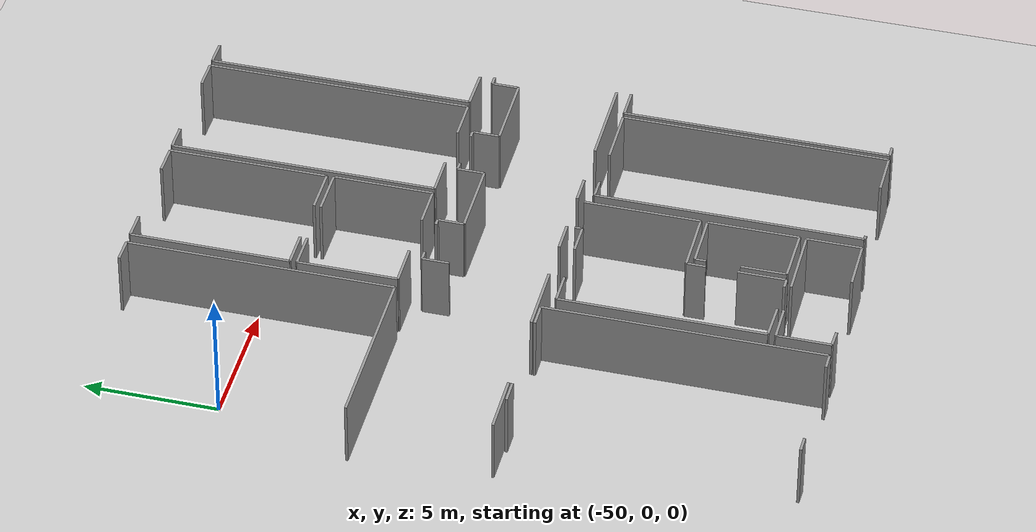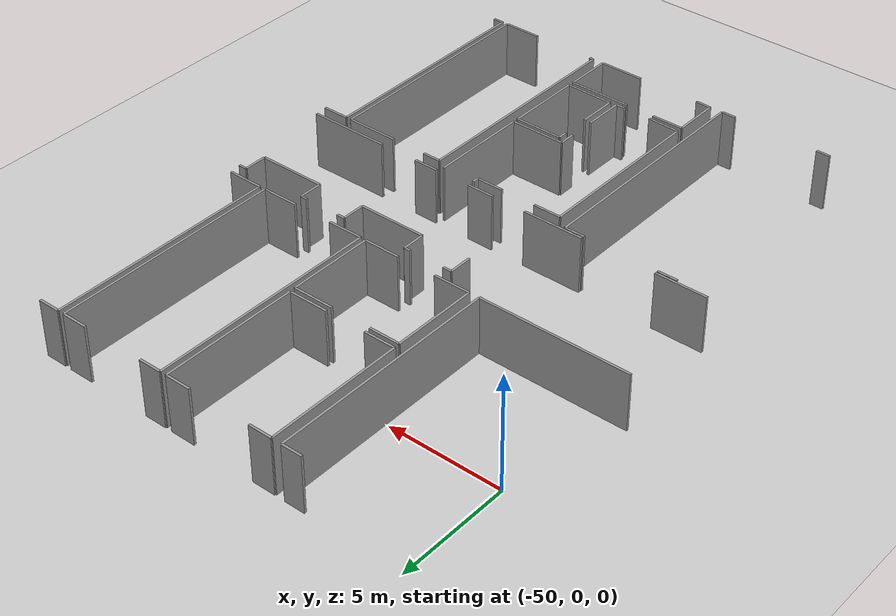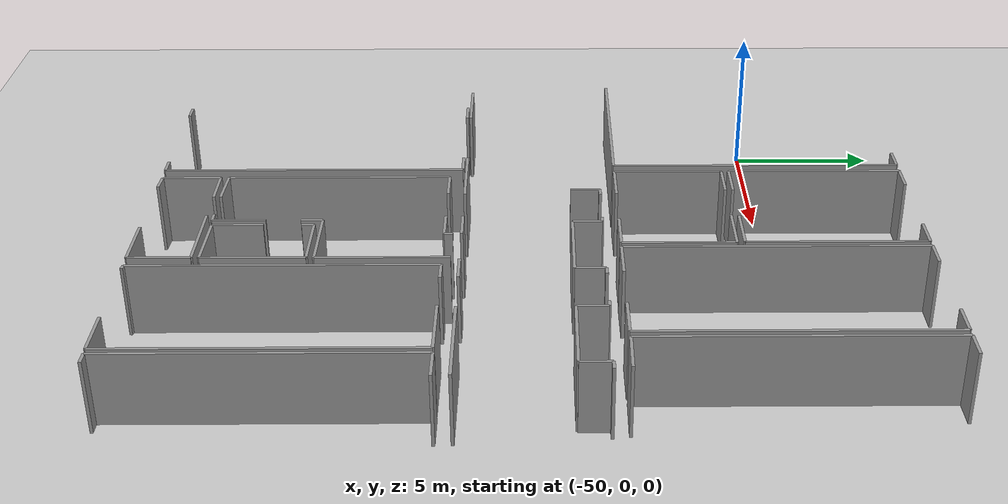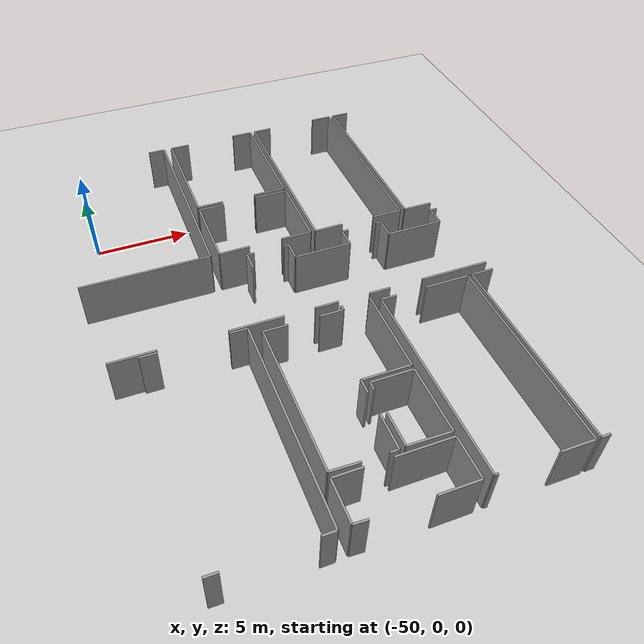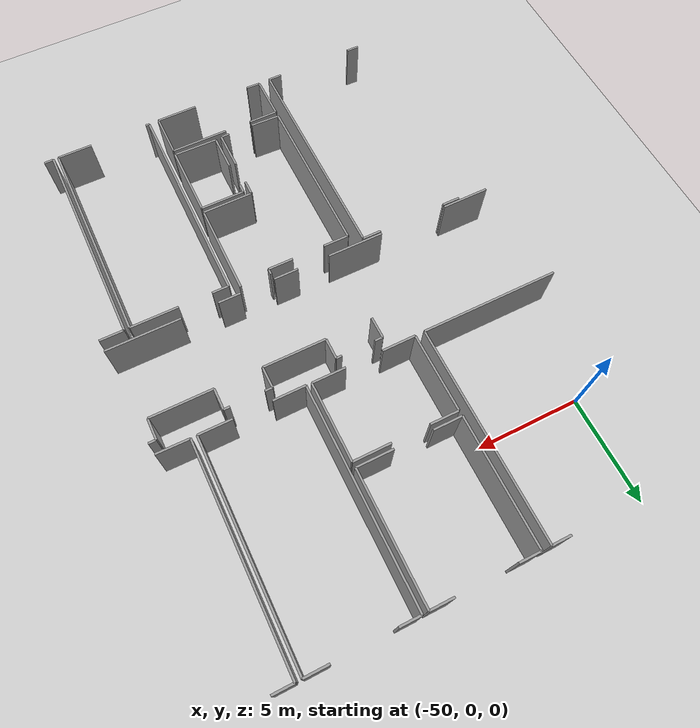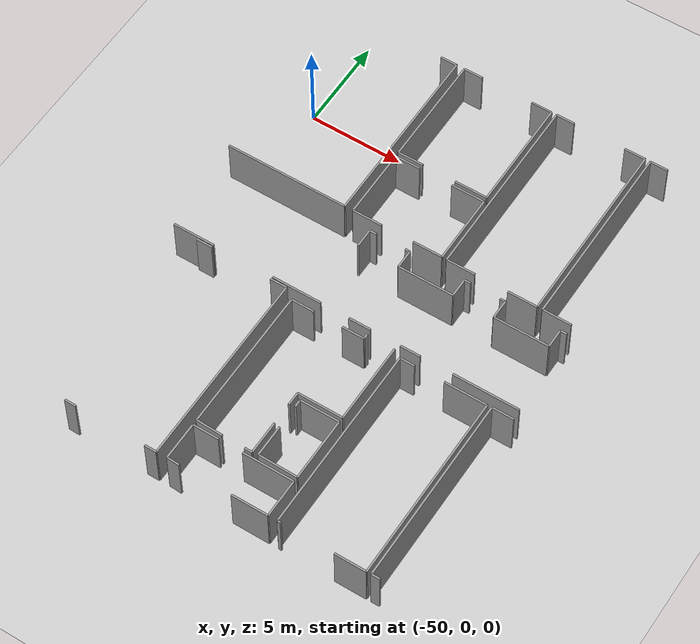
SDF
<sdf version="1.6">
 <world name="default">
  <model name="ground_plane">
   <static>1</static>
   <link name="link">
    <collision name="collision">
     <geometry><plane><normal>0 0 1</normal><size>100 100</size></plane></geometry>
     <surface><friction><ode><mu>100</mu><mu2>50</mu2></ode></friction></surface>
    </collision>
    <visual name="visual">
     <cast_shadows>0</cast_shadows>
     <geometry><plane><normal>0 0 1</normal><size>100 100</size></plane></geometry>
     <material>
      <script><uri>file://media/materials/scripts/gazebo.material</uri><name>Gazebo/Grey</name></script>
     </material>
    </visual>
   </link>
  </model>
  <model name="50055639">
   <static>1</static>
   <link name="Wall_20">
    <collision name="Wall_20_Collision">
     <geometry><box><size>0.902397847142 0.1 2.5</size></box></geometry>
     <pose>0.451198923571 0 1.25 0 0 0</pose>
    </collision>
    <visual name="Wall_20_Visual">
     <pose>0.451198923571 0 1.25 0 0 0</pose>
     <geometry><box><size>0.902397847142 0.1 2.5</size></box></geometry>
     <material>
      <script><uri>file://media/materials/scripts/gazebo.material</uri><name>Gazebo/Grey</name></script>
      <ambient>1 1 1 1</ambient>
     </material>
    </visual>
    <pose>24.6544129781 -15.9805785806 0 0 0 0.0</pose>
   </link>
   <link name="Wall_21">
    <collision name="Wall_21_Collision">
     <geometry><box><size>10.0073623681 0.1 2.5</size></box></geometry>
     <pose>5.00368118407 0 1.25 0 0 0</pose>
    </collision>
    <visual name="Wall_21_Visual">
     <pose>5.00368118407 0 1.25 0 0 0</pose>
     <geometry><box><size>10.0073623681 0.1 2.5</size></box></geometry>
     <material>
      <script><uri>file://media/materials/scripts/gazebo.material</uri><name>Gazebo/Grey</name></script>
      <ambient>1 1 1 1</ambient>
     </material>
    </visual>
    <pose>25.5568108252 -15.9805785806 0 0 0 -1.57079632679</pose>
   </link>
   <link name="Wall_22">
    <collision name="Wall_22_Collision">
     <geometry><box><size>6.57789512434 0.1 2.5</size></box></geometry>
     <pose>3.28894756217 0 1.25 0 0 0</pose>
    </collision>
    <visual name="Wall_22_Visual">
     <pose>3.28894756217 0 1.25 0 0 0</pose>
     <geometry><box><size>6.57789512434 0.1 2.5</size></box></geometry>
     <material>
      <script><uri>file://media/materials/scripts/gazebo.material</uri><name>Gazebo/Grey</name></script>
      <ambient>1 1 1 1</ambient>
     </material>
    </visual>
    <pose>25.5568108252 -25.9879409487 0 0 0 3.14159265359</pose>
   </link>
   <link name="Wall_51">
    <collision name="Wall_51_Collision">
     <geometry><box><size>1.01549905432 0.1 2.5</size></box></geometry>
     <pose>0.507749527158 0 1.25 0 0 0</pose>
    </collision>
    <visual name="Wall_51_Visual">
     <pose>0.507749527158 0 1.25 0 0 0</pose>
     <geometry><box><size>1.01549905432 0.1 2.5</size></box></geometry>
     <material>
      <script><uri>file://media/materials/scripts/gazebo.material</uri><name>Gazebo/Grey</name></script>
      <ambient>1 1 1 1</ambient>
     </material>
    </visual>
    <pose>27.3058810089 -27.5452087485 0 0 0 1.57079632679</pose>
   </link>
   <link name="Wall_52">
    <collision name="Wall_52_Collision">
     <geometry><box><size>0.37522690057 0.1 2.5</size></box></geometry>
     <pose>0.187613450285 0 1.25 0 0 0</pose>
    </collision>
    <visual name="Wall_52_Visual">
     <pose>0.187613450285 0 1.25 0 0 0</pose>
     <geometry><box><size>0.37522690057 0.1 2.5</size></box></geometry>
     <material>
      <script><uri>file://media/materials/scripts/gazebo.material</uri><name>Gazebo/Grey</name></script>
      <ambient>1 1 1 1</ambient>
     </material>
    </visual>
    <pose>27.3058810089 -26.5297096942 0 0 0 0.0</pose>
   </link>
   <link name="Wall_53">
    <collision name="Wall_53_Collision">
     <geometry><box><size>0.268726437249 0.1 2.5</size></box></geometry>
     <pose>0.134363218624 0 1.25 0 0 0</pose>
    </collision>
    <visual name="Wall_53_Visual">
     <pose>0.134363218624 0 1.25 0 0 0</pose>
     <geometry><box><size>0.268726437249 0.1 2.5</size></box></geometry>
     <material>
      <script><uri>file://media/materials/scripts/gazebo.material</uri><name>Gazebo/Grey</name></script>
      <ambient>1 1 1 1</ambient>
     </material>
    </visual>
    <pose>29.2600820015 -26.5297096942 0 0 0 0.0</pose>
   </link>
   <link name="Wall_54">
    <collision name="Wall_54_Collision">
     <geometry><box><size>0.988588329377 0.1 2.5</size></box></geometry>
     <pose>0.494294164689 0 1.25 0 0 0</pose>
    </collision>
    <visual name="Wall_54_Visual">
     <pose>0.494294164689 0 1.25 0 0 0</pose>
     <geometry><box><size>0.988588329377 0.1 2.5</size></box></geometry>
     <material>
      <script><uri>file://media/materials/scripts/gazebo.material</uri><name>Gazebo/Grey</name></script>
      <ambient>1 1 1 1</ambient>
     </material>
    </visual>
    <pose>29.5288084388 -26.5297096942 0 0 0 -1.57079632679</pose>
   </link>
   <link name="Wall_55">
    <collision name="Wall_55_Collision">
     <geometry><box><size>2.96589192551 0.1 2.5</size></box></geometry>
     <pose>1.48294596276 0 1.25 0 0 0</pose>
    </collision>
    <visual name="Wall_55_Visual">
     <pose>1.48294596276 0 1.25 0 0 0</pose>
     <geometry><box><size>2.96589192551 0.1 2.5</size></box></geometry>
     <material>
      <script><uri>file://media/materials/scripts/gazebo.material</uri><name>Gazebo/Grey</name></script>
      <ambient>1 1 1 1</ambient>
     </material>
    </visual>
    <pose>29.5288084388 -27.5182980236 0 0 0 0.0</pose>
   </link>
   <link name="Wall_56">
    <collision name="Wall_56_Collision">
     <geometry><box><size>1.00788281141 0.1 2.5</size></box></geometry>
     <pose>0.503941405705 0 1.25 0 0 0</pose>
    </collision>
    <visual name="Wall_56_Visual">
     <pose>0.503941405705 0 1.25 0 0 0</pose>
     <geometry><box><size>1.00788281141 0.1 2.5</size></box></geometry>
     <material>
      <script><uri>file://media/materials/scripts/gazebo.material</uri><name>Gazebo/Grey</name></script>
      <ambient>1 1 1 1</ambient>
     </material>
    </visual>
    <pose>32.4947003643 -27.5182980236 0 0 0 1.57079632679</pose>
   </link>
   <link name="Wall_57">
    <collision name="Wall_57_Collision">
     <geometry><box><size>0.345523553231 0.1 2.5</size></box></geometry>
     <pose>0.172761776616 0 1.25 0 0 0</pose>
    </collision>
    <visual name="Wall_57_Visual">
     <pose>0.172761776616 0 1.25 0 0 0</pose>
     <geometry><box><size>0.345523553231 0.1 2.5</size></box></geometry>
     <material>
      <script><uri>file://media/materials/scripts/gazebo.material</uri><name>Gazebo/Grey</name></script>
      <ambient>1 1 1 1</ambient>
     </material>
    </visual>
    <pose>32.4947003643 -26.5104152122 0 0 0 0.0</pose>
   </link>
   <link name="Wall_58">
    <collision name="Wall_58_Collision">
     <geometry><box><size>0.287893981899 0.1 2.5</size></box></geometry>
     <pose>0.143946990949 0 1.25 0 0 0</pose>
    </collision>
    <visual name="Wall_58_Visual">
     <pose>0.143946990949 0 1.25 0 0 0</pose>
     <geometry><box><size>0.287893981899 0.1 2.5</size></box></geometry>
     <material>
      <script><uri>file://media/materials/scripts/gazebo.material</uri><name>Gazebo/Grey</name></script>
      <ambient>1 1 1 1</ambient>
     </material>
    </visual>
    <pose>34.4143743891 -26.5104152122 0 0 0 0.0</pose>
   </link>
   <link name="Wall_59">
    <collision name="Wall_59_Collision">
     <geometry><box><size>1.01753005243 0.1 2.5</size></box></geometry>
     <pose>0.508765026213 0 1.25 0 0 0</pose>
    </collision>
    <visual name="Wall_59_Visual">
     <pose>0.508765026213 0 1.25 0 0 0</pose>
     <geometry><box><size>1.01753005243 0.1 2.5</size></box></geometry>
     <material>
      <script><uri>file://media/materials/scripts/gazebo.material</uri><name>Gazebo/Grey</name></script>
      <ambient>1 1 1 1</ambient>
     </material>
    </visual>
    <pose>34.702268371 -26.5104152122 0 0 0 -1.57079632679</pose>
   </link>
   <link name="Wall_60">
    <collision name="Wall_60_Collision">
     <geometry><box><size>2.93707713985 0.1 2.5</size></box></geometry>
     <pose>1.46853856992 0 1.25 0 0 0</pose>
    </collision>
    <visual name="Wall_60_Visual">
     <pose>1.46853856992 0 1.25 0 0 0</pose>
     <geometry><box><size>2.93707713985 0.1 2.5</size></box></geometry>
     <material>
      <script><uri>file://media/materials/scripts/gazebo.material</uri><name>Gazebo/Grey</name></script>
      <ambient>1 1 1 1</ambient>
     </material>
    </visual>
    <pose>34.702268371 -27.5279452646 0 0 0 0.0</pose>
   </link>
   <link name="Wall_61">
    <collision name="Wall_61_Collision">
     <geometry><box><size>1.00788281141 0.1 2.5</size></box></geometry>
     <pose>0.503941405705 0 1.25 0 0 0</pose>
    </collision>
    <visual name="Wall_61_Visual">
     <pose>0.503941405705 0 1.25 0 0 0</pose>
     <geometry><box><size>1.00788281141 0.1 2.5</size></box></geometry>
     <material>
      <script><uri>file://media/materials/scripts/gazebo.material</uri><name>Gazebo/Grey</name></script>
      <ambient>1 1 1 1</ambient>
     </material>
    </visual>
    <pose>37.6393455109 -27.5279452646 0 0 0 1.57079632679</pose>
   </link>
   <link name="Wall_62">
    <collision name="Wall_62_Collision">
     <geometry><box><size>0.355170794247 0.1 2.5</size></box></geometry>
     <pose>0.177585397124 0 1.25 0 0 0</pose>
    </collision>
    <visual name="Wall_62_Visual">
     <pose>0.177585397124 0 1.25 0 0 0</pose>
     <geometry><box><size>0.355170794247 0.1 2.5</size></box></geometry>
     <material>
      <script><uri>file://media/materials/scripts/gazebo.material</uri><name>Gazebo/Grey</name></script>
      <ambient>1 1 1 1</ambient>
     </material>
    </visual>
    <pose>37.6393455109 -26.5200624532 0 0 0 0.0</pose>
   </link>
   <link name="Wall_82">
    <collision name="Wall_82_Collision">
     <geometry><box><size>3.52885921375 0.1 2.5</size></box></geometry>
     <pose>1.76442960687 0 1.25 0 0 0</pose>
    </collision>
    <visual name="Wall_82_Visual">
     <pose>1.76442960687 0 1.25 0 0 0</pose>
     <geometry><box><size>3.52885921375 0.1 2.5</size></box></geometry>
     <material>
      <script><uri>file://media/materials/scripts/gazebo.material</uri><name>Gazebo/Grey</name></script>
      <ambient>1 1 1 1</ambient>
     </material>
    </visual>
    <pose>38.2627349928 -31.1545462623 0 0 0 3.14159265359</pose>
   </link>
   <link name="Wall_83">
    <collision name="Wall_83_Collision">
     <geometry><box><size>1.0671625687 0.1 2.5</size></box></geometry>
     <pose>0.533581284352 0 1.25 0 0 0</pose>
    </collision>
    <visual name="Wall_83_Visual">
     <pose>0.533581284352 0 1.25 0 0 0</pose>
     <geometry><box><size>1.0671625687 0.1 2.5</size></box></geometry>
     <material>
      <script><uri>file://media/materials/scripts/gazebo.material</uri><name>Gazebo/Grey</name></script>
      <ambient>1 1 1 1</ambient>
     </material>
    </visual>
    <pose>33.0014343924 -31.1545462623 0 0 0 3.14159265359</pose>
   </link>
   <link name="Wall_84">
    <collision name="Wall_84_Collision">
     <geometry><box><size>1.17683646657 0.1 2.5</size></box></geometry>
     <pose>0.588418233286 0 1.25 0 0 0</pose>
    </collision>
    <visual name="Wall_84_Visual">
     <pose>0.588418233286 0 1.25 0 0 0</pose>
     <geometry><box><size>1.17683646657 0.1 2.5</size></box></geometry>
     <material>
      <script><uri>file://media/materials/scripts/gazebo.material</uri><name>Gazebo/Grey</name></script>
      <ambient>1 1 1 1</ambient>
     </material>
    </visual>
    <pose>30.3233095114 -31.1545462623 0 0 0 3.14159265359</pose>
   </link>
   <link name="Wall_85">
    <collision name="Wall_85_Collision">
     <geometry><box><size>2.67660163241 0.1 2.5</size></box></geometry>
     <pose>1.33830081621 0 1.25 0 0 0</pose>
    </collision>
    <visual name="Wall_85_Visual">
     <pose>1.33830081621 0 1.25 0 0 0</pose>
     <geometry><box><size>2.67660163241 0.1 2.5</size></box></geometry>
     <material>
      <script><uri>file://media/materials/scripts/gazebo.material</uri><name>Gazebo/Grey</name></script>
      <ambient>1 1 1 1</ambient>
     </material>
    </visual>
    <pose>27.6082458523 -31.1545462623 0 0 0 3.14159265359</pose>
   </link>
   <link name="Wall_86">
    <collision name="Wall_86_Collision">
     <geometry><box><size>2.25034590437 0.1 2.5</size></box></geometry>
     <pose>1.12517295218 0 1.25 0 0 0</pose>
    </collision>
    <visual name="Wall_86_Visual">
     <pose>1.12517295218 0 1.25 0 0 0</pose>
     <geometry><box><size>2.25034590437 0.1 2.5</size></box></geometry>
     <material>
      <script><uri>file://media/materials/scripts/gazebo.material</uri><name>Gazebo/Grey</name></script>
      <ambient>1 1 1 1</ambient>
     </material>
    </visual>
    <pose>21.6433313446 -31.1545462623 0 0 0 3.14159265359</pose>
   </link>
   <link name="Wall_88">
    <collision name="Wall_88_Collision">
     <geometry><box><size>5.98966729712 0.1 2.5</size></box></geometry>
     <pose>2.99483364856 0 1.25 0 0 0</pose>
    </collision>
    <visual name="Wall_88_Visual">
     <pose>2.99483364856 0 1.25 0 0 0</pose>
     <geometry><box><size>5.98966729712 0.1 2.5</size></box></geometry>
     <material>
      <script><uri>file://media/materials/scripts/gazebo.material</uri><name>Gazebo/Grey</name></script>
      <ambient>1 1 1 1</ambient>
     </material>
    </visual>
    <pose>26.0033765344 -21.971007502 0 0 0 1.57079632679</pose>
   </link>
   <link name="Wall_89">
    <collision name="Wall_89_Collision">
     <geometry><box><size>1.02235367293 0.1 2.5</size></box></geometry>
     <pose>0.511176836467 0 1.25 0 0 0</pose>
    </collision>
    <visual name="Wall_89_Visual">
     <pose>0.511176836467 0 1.25 0 0 0</pose>
     <geometry><box><size>1.02235367293 0.1 2.5</size></box></geometry>
     <material>
      <script><uri>file://media/materials/scripts/gazebo.material</uri><name>Gazebo/Grey</name></script>
      <ambient>1 1 1 1</ambient>
     </material>
    </visual>
    <pose>26.0033765344 -15.9813402049 0 0 0 0.0</pose>
   </link>
   <link name="Wall_90">
    <collision name="Wall_90_Collision">
     <geometry><box><size>1.11489102426 0.1 2.5</size></box></geometry>
     <pose>0.557445512129 0 1.25 0 0 0</pose>
    </collision>
    <visual name="Wall_90_Visual">
     <pose>0.557445512129 0 1.25 0 0 0</pose>
     <geometry><box><size>1.11489102426 0.1 2.5</size></box></geometry>
     <material>
      <script><uri>file://media/materials/scripts/gazebo.material</uri><name>Gazebo/Grey</name></script>
      <ambient>1 1 1 1</ambient>
     </material>
    </visual>
    <pose>29.8031201208 -15.9813402049 0 0 0 0.0</pose>
   </link>
   <link name="Wall_91">
    <collision name="Wall_91_Collision">
     <geometry><box><size>5.9883979233 0.1 2.5</size></box></geometry>
     <pose>2.99419896165 0 1.25 0 0 0</pose>
    </collision>
    <visual name="Wall_91_Visual">
     <pose>2.99419896165 0 1.25 0 0 0</pose>
     <geometry><box><size>5.9883979233 0.1 2.5</size></box></geometry>
     <material>
      <script><uri>file://media/materials/scripts/gazebo.material</uri><name>Gazebo/Grey</name></script>
      <ambient>1 1 1 1</ambient>
     </material>
    </visual>
    <pose>30.9180111451 -15.9813402049 0 0 0 -1.57079632679</pose>
   </link>
   <link name="Wall_92">
    <collision name="Wall_92_Collision">
     <geometry><box><size>1.73866131837 0.1 2.5</size></box></geometry>
     <pose>0.869330659186 0 1.25 0 0 0</pose>
    </collision>
    <visual name="Wall_92_Visual">
     <pose>0.869330659186 0 1.25 0 0 0</pose>
     <geometry><box><size>1.73866131837 0.1 2.5</size></box></geometry>
     <material>
      <script><uri>file://media/materials/scripts/gazebo.material</uri><name>Gazebo/Grey</name></script>
      <ambient>1 1 1 1</ambient>
     </material>
    </visual>
    <pose>30.9180111451 -21.9697381282 0 0 0 3.14159265359</pose>
   </link>
   <link name="Wall_93">
    <collision name="Wall_93_Collision">
     <geometry><box><size>1.3737169322 0.1 2.5</size></box></geometry>
     <pose>0.686858466102 0 1.25 0 0 0</pose>
    </collision>
    <visual name="Wall_93_Visual">
     <pose>0.686858466102 0 1.25 0 0 0</pose>
     <geometry><box><size>1.3737169322 0.1 2.5</size></box></geometry>
     <material>
      <script><uri>file://media/materials/scripts/gazebo.material</uri><name>Gazebo/Grey</name></script>
      <ambient>1 1 1 1</ambient>
     </material>
    </visual>
    <pose>27.3770928801 -21.9697381282 0 0 0 -3.14066861024</pose>
   </link>
   <link name="Wall_94">
    <collision name="Wall_94_Collision">
     <geometry><box><size>3.7508726945 0.1 2.5</size></box></geometry>
     <pose>1.87543634725 0 1.25 0 0 0</pose>
    </collision>
    <visual name="Wall_94_Visual">
     <pose>1.87543634725 0 1.25 0 0 0</pose>
     <geometry><box><size>3.7508726945 0.1 2.5</size></box></geometry>
     <material>
      <script><uri>file://media/materials/scripts/gazebo.material</uri><name>Gazebo/Grey</name></script>
      <ambient>1 1 1 1</ambient>
     </material>
    </visual>
    <pose>26.0188628949 -25.980705518 0 0 0 1.57079632679</pose>
   </link>
   <link name="Wall_95">
    <collision name="Wall_95_Collision">
     <geometry><box><size>1.35150230391 0.1 2.5</size></box></geometry>
     <pose>0.675751151957 0 1.25 0 0 0</pose>
    </collision>
    <visual name="Wall_95_Visual">
     <pose>0.675751151957 0 1.25 0 0 0</pose>
     <geometry><box><size>1.35150230391 0.1 2.5</size></box></geometry>
     <material>
      <script><uri>file://media/materials/scripts/gazebo.material</uri><name>Gazebo/Grey</name></script>
      <ambient>1 1 1 1</ambient>
     </material>
    </visual>
    <pose>26.0188628949 -22.2298328235 0 0 0 0.0</pose>
   </link>
   <link name="Wall_96">
    <collision name="Wall_96_Collision">
     <geometry><box><size>1.78537427487 0.1 2.5</size></box></geometry>
     <pose>0.892687137435 0 1.25 0 0 0</pose>
    </collision>
    <visual name="Wall_96_Visual">
     <pose>0.892687137435 0 1.25 0 0 0</pose>
     <geometry><box><size>1.78537427487 0.1 2.5</size></box></geometry>
     <material>
      <script><uri>file://media/materials/scripts/gazebo.material</uri><name>Gazebo/Grey</name></script>
      <ambient>1 1 1 1</ambient>
     </material>
    </visual>
    <pose>29.1542162251 -22.2298328235 0 0 0 0.0</pose>
   </link>
   <link name="Wall_97">
    <collision name="Wall_97_Collision">
     <geometry><box><size>3.74312951421 0.1 2.5</size></box></geometry>
     <pose>1.87156475711 0 1.25 0 0 0</pose>
    </collision>
    <visual name="Wall_97_Visual">
     <pose>1.87156475711 0 1.25 0 0 0</pose>
     <geometry><box><size>3.74312951421 0.1 2.5</size></box></geometry>
     <material>
      <script><uri>file://media/materials/scripts/gazebo.material</uri><name>Gazebo/Grey</name></script>
      <ambient>1 1 1 1</ambient>
     </material>
    </visual>
    <pose>30.9395905 -22.2298328235 0 0 0 -1.57079632679</pose>
   </link>
   <link name="Wall_98">
    <collision name="Wall_98_Collision">
     <geometry><box><size>1.58950989477 0.1 2.5</size></box></geometry>
     <pose>0.794754947384 0 1.25 0 0 0</pose>
    </collision>
    <visual name="Wall_98_Visual">
     <pose>0.794754947384 0 1.25 0 0 0</pose>
     <geometry><box><size>1.58950989477 0.1 2.5</size></box></geometry>
     <material>
      <script><uri>file://media/materials/scripts/gazebo.material</uri><name>Gazebo/Grey</name></script>
      <ambient>1 1 1 1</ambient>
     </material>
    </visual>
    <pose>30.9395905 -25.9729623377 0 0 0 3.14159265359</pose>
   </link>
   <link name="Wall_99">
    <collision name="Wall_99_Collision">
     <geometry><box><size>1.58940181895 0.1 2.5</size></box></geometry>
     <pose>0.794700909474 0 1.25 0 0 0</pose>
    </collision>
    <visual name="Wall_99_Visual">
     <pose>0.794700909474 0 1.25 0 0 0</pose>
     <geometry><box><size>1.58940181895 0.1 2.5</size></box></geometry>
     <material>
      <script><uri>file://media/materials/scripts/gazebo.material</uri><name>Gazebo/Grey</name></script>
      <ambient>1 1 1 1</ambient>
     </material>
    </visual>
    <pose>27.6082458523 -25.9729623377 0 0 0 -3.13672087678</pose>
   </link>
   <link name="Wall_100">
    <collision name="Wall_100_Collision">
     <geometry><box><size>10.0104088653 0.1 2.5</size></box></geometry>
     <pose>5.00520443265 0 1.25 0 0 0</pose>
    </collision>
    <visual name="Wall_100_Visual">
     <pose>5.00520443265 0 1.25 0 0 0</pose>
     <geometry><box><size>10.0104088653 0.1 2.5</size></box></geometry>
     <material>
      <script><uri>file://media/materials/scripts/gazebo.material</uri><name>Gazebo/Grey</name></script>
      <ambient>1 1 1 1</ambient>
     </material>
    </visual>
    <pose>31.1996851953 -25.9846405768 0 0 0 1.57079632679</pose>
   </link>
   <link name="Wall_101">
    <collision name="Wall_101_Collision">
     <geometry><box><size>0.990111577959 0.1 2.5</size></box></geometry>
     <pose>0.495055788979 0 1.25 0 0 0</pose>
    </collision>
    <visual name="Wall_101_Visual">
     <pose>0.495055788979 0 1.25 0 0 0</pose>
     <geometry><box><size>0.990111577959 0.1 2.5</size></box></geometry>
     <material>
      <script><uri>file://media/materials/scripts/gazebo.material</uri><name>Gazebo/Grey</name></script>
      <ambient>1 1 1 1</ambient>
     </material>
    </visual>
    <pose>31.1996851953 -15.9742317115 0 0 0 0.0</pose>
   </link>
   <link name="Wall_102">
    <collision name="Wall_102_Collision">
     <geometry><box><size>1.11704895975 0.1 2.5</size></box></geometry>
     <pose>0.558524479874 0 1.25 0 0 0</pose>
    </collision>
    <visual name="Wall_102_Visual">
     <pose>0.558524479874 0 1.25 0 0 0</pose>
     <geometry><box><size>1.11704895975 0.1 2.5</size></box></geometry>
     <material>
      <script><uri>file://media/materials/scripts/gazebo.material</uri><name>Gazebo/Grey</name></script>
      <ambient>1 1 1 1</ambient>
     </material>
    </visual>
    <pose>34.972898869 -15.9742317115 0 0 0 0.0</pose>
   </link>
   <link name="Wall_103">
    <collision name="Wall_103_Collision">
     <geometry><box><size>10.0038081215 0.1 2.5</size></box></geometry>
     <pose>5.00190406073 0 1.25 0 0 0</pose>
    </collision>
    <visual name="Wall_103_Visual">
     <pose>5.00190406073 0 1.25 0 0 0</pose>
     <geometry><box><size>10.0038081215 0.1 2.5</size></box></geometry>
     <material>
      <script><uri>file://media/materials/scripts/gazebo.material</uri><name>Gazebo/Grey</name></script>
      <ambient>1 1 1 1</ambient>
     </material>
    </visual>
    <pose>36.0899478287 -15.9742317115 0 0 0 -1.57079632679</pose>
   </link>
   <link name="Wall_104">
    <collision name="Wall_104_Collision">
     <geometry><box><size>1.57986265375 0.1 2.5</size></box></geometry>
     <pose>0.789931326876 0 1.25 0 0 0</pose>
    </collision>
    <visual name="Wall_104_Visual">
     <pose>0.789931326876 0 1.25 0 0 0</pose>
     <geometry><box><size>1.57986265375 0.1 2.5</size></box></geometry>
     <material>
      <script><uri>file://media/materials/scripts/gazebo.material</uri><name>Gazebo/Grey</name></script>
      <ambient>1 1 1 1</ambient>
     </material>
    </visual>
    <pose>36.0899478287 -25.978039833 0 0 0 3.14159265359</pose>
   </link>
   <link name="Wall_105">
    <collision name="Wall_105_Collision">
     <geometry><box><size>1.53684505648 0.1 2.5</size></box></geometry>
     <pose>0.768422528238 0 1.25 0 0 0</pose>
    </collision>
    <visual name="Wall_105_Visual">
     <pose>0.768422528238 0 1.25 0 0 0</pose>
     <geometry><box><size>1.53684505648 0.1 2.5</size></box></geometry>
     <material>
      <script><uri>file://media/materials/scripts/gazebo.material</uri><name>Gazebo/Grey</name></script>
      <ambient>1 1 1 1</ambient>
     </material>
    </visual>
    <pose>32.7365160766 -25.978039833 0 0 0 -3.13729764407</pose>
   </link>
   <link name="Wall_106">
    <collision name="Wall_106_Collision">
     <geometry><box><size>9.99174907018 0.1 2.5</size></box></geometry>
     <pose>4.99587453509 0 1.25 0 0 0</pose>
    </collision>
    <visual name="Wall_106_Visual">
     <pose>4.99587453509 0 1.25 0 0 0</pose>
     <geometry><box><size>9.99174907018 0.1 2.5</size></box></geometry>
     <material>
      <script><uri>file://media/materials/scripts/gazebo.material</uri><name>Gazebo/Grey</name></script>
      <ambient>1 1 1 1</ambient>
     </material>
    </visual>
    <pose>36.3723835032 -25.9633150967 0 0 0 1.57079632679</pose>
   </link>
   <link name="Wall_107">
    <collision name="Wall_107_Collision">
     <geometry><box><size>0.950253240077 0.1 2.5</size></box></geometry>
     <pose>0.475126620038 0 1.25 0 0 0</pose>
    </collision>
    <visual name="Wall_107_Visual">
     <pose>0.475126620038 0 1.25 0 0 0</pose>
     <geometry><box><size>0.950253240077 0.1 2.5</size></box></geometry>
     <material>
      <script><uri>file://media/materials/scripts/gazebo.material</uri><name>Gazebo/Grey</name></script>
      <ambient>1 1 1 1</ambient>
     </material>
    </visual>
    <pose>36.3723835032 -15.9715660265 0 0 0 0.0</pose>
   </link>
   <link name="Wall_111">
    <collision name="Wall_111_Collision">
     <geometry><box><size>1.54165968593 0.1 2.5</size></box></geometry>
     <pose>0.770829842965 0 1.25 0 0 0</pose>
    </collision>
    <visual name="Wall_111_Visual">
     <pose>0.770829842965 0 1.25 0 0 0</pose>
     <geometry><box><size>1.54165968593 0.1 2.5</size></box></geometry>
     <material>
      <script><uri>file://media/materials/scripts/gazebo.material</uri><name>Gazebo/Grey</name></script>
      <ambient>1 1 1 1</ambient>
     </material>
    </visual>
    <pose>37.9139110677 -25.9834981404 0 0 0 3.12850051628</pose>
   </link>
   <link name="Wall_136">
    <collision name="Wall_136_Collision">
     <geometry><box><size>10.0161210475 0.1 2.5</size></box></geometry>
     <pose>5.00806052374 0 1.25 0 0 0</pose>
    </collision>
    <visual name="Wall_136_Visual">
     <pose>5.00806052374 0 1.25 0 0 0</pose>
     <geometry><box><size>10.0161210475 0.1 2.5</size></box></geometry>
     <material>
      <script><uri>file://media/materials/scripts/gazebo.material</uri><name>Gazebo/Grey</name></script>
      <ambient>1 1 1 1</ambient>
     </material>
    </visual>
    <pose>37.1498749667 -41.7237334823 0 0 0 1.57079632679</pose>
   </link>
   <link name="Wall_137">
    <collision name="Wall_137_Collision">
     <geometry><box><size>1.14891024258 0.1 2.5</size></box></geometry>
     <pose>0.574455121289 0 1.25 0 0 0</pose>
    </collision>
    <visual name="Wall_137_Visual">
     <pose>0.574455121289 0 1.25 0 0 0</pose>
     <geometry><box><size>1.14891024258 0.1 2.5</size></box></geometry>
     <material>
      <script><uri>file://media/materials/scripts/gazebo.material</uri><name>Gazebo/Grey</name></script>
      <ambient>1 1 1 1</ambient>
     </material>
    </visual>
    <pose>37.1498749667 -31.7076124348 0 0 0 0.0</pose>
   </link>
   <link name="Wall_141">
    <collision name="Wall_141_Collision">
     <geometry><box><size>0.452277891316 0.1 2.5</size></box></geometry>
     <pose>0.226138945658 0 1.25 0 0 0</pose>
    </collision>
    <visual name="Wall_141_Visual">
     <pose>0.226138945658 0 1.25 0 0 0</pose>
     <geometry><box><size>0.452277891316 0.1 2.5</size></box></geometry>
     <material>
      <script><uri>file://media/materials/scripts/gazebo.material</uri><name>Gazebo/Grey</name></script>
      <ambient>1 1 1 1</ambient>
     </material>
    </visual>
    <pose>37.602152858 -41.7237334823 0 0 0 3.14159265359</pose>
   </link>
   <link name="Wall_142">
    <collision name="Wall_142_Collision">
     <geometry><box><size>9.98908338517 0.1 2.5</size></box></geometry>
     <pose>4.99454169258 0 1.25 0 0 0</pose>
    </collision>
    <visual name="Wall_142_Visual">
     <pose>4.99454169258 0 1.25 0 0 0</pose>
     <geometry><box><size>9.98908338517 0.1 2.5</size></box></geometry>
     <material>
      <script><uri>file://media/materials/scripts/gazebo.material</uri><name>Gazebo/Grey</name></script>
      <ambient>1 1 1 1</ambient>
     </material>
    </visual>
    <pose>32.2717983219 -41.7105319946 0 0 0 1.57079632679</pose>
   </link>
   <link name="Wall_143">
    <collision name="Wall_143_Collision">
     <geometry><box><size>0.787011767095 0.1 2.5</size></box></geometry>
     <pose>0.393505883548 0 1.25 0 0 0</pose>
    </collision>
    <visual name="Wall_143_Visual">
     <pose>0.393505883548 0 1.25 0 0 0</pose>
     <geometry><box><size>0.787011767095 0.1 2.5</size></box></geometry>
     <material>
      <script><uri>file://media/materials/scripts/gazebo.material</uri><name>Gazebo/Grey</name></script>
      <ambient>1 1 1 1</ambient>
     </material>
    </visual>
    <pose>32.2717983219 -31.7214486094 0 0 0 0.0</pose>
   </link>
   <link name="Wall_144">
    <collision name="Wall_144_Collision">
     <geometry><box><size>2.27154444712 0.1 2.5</size></box></geometry>
     <pose>1.13577222356 0 1.25 0 0 0</pose>
    </collision>
    <visual name="Wall_144_Visual">
     <pose>1.13577222356 0 1.25 0 0 0</pose>
     <geometry><box><size>2.27154444712 0.1 2.5</size></box></geometry>
     <material>
      <script><uri>file://media/materials/scripts/gazebo.material</uri><name>Gazebo/Grey</name></script>
      <ambient>1 1 1 1</ambient>
     </material>
    </visual>
    <pose>34.6371494942 -31.7214486094 0 0 0 0.0</pose>
   </link>
   <link name="Wall_145">
    <collision name="Wall_145_Collision">
     <geometry><box><size>10.015613298 0.1 2.5</size></box></geometry>
     <pose>5.00780664898 0 1.25 0 0 0</pose>
    </collision>
    <visual name="Wall_145_Visual">
     <pose>5.00780664898 0 1.25 0 0 0</pose>
     <geometry><box><size>10.015613298 0.1 2.5</size></box></geometry>
     <material>
      <script><uri>file://media/materials/scripts/gazebo.material</uri><name>Gazebo/Grey</name></script>
      <ambient>1 1 1 1</ambient>
     </material>
    </visual>
    <pose>36.9086939413 -31.7214486094 0 0 0 -1.57079632679</pose>
   </link>
   <link name="Wall_146">
    <collision name="Wall_146_Collision">
     <geometry><box><size>1.65805608094 0.1 2.5</size></box></geometry>
     <pose>0.829028040468 0 1.25 0 0 0</pose>
    </collision>
    <visual name="Wall_146_Visual">
     <pose>0.829028040468 0 1.25 0 0 0</pose>
     <geometry><box><size>1.65805608094 0.1 2.5</size></box></geometry>
     <material>
      <script><uri>file://media/materials/scripts/gazebo.material</uri><name>Gazebo/Grey</name></script>
      <ambient>1 1 1 1</ambient>
     </material>
    </visual>
    <pose>36.9086939413 -41.7370619074 0 0 0 3.14159265359</pose>
   </link>
   <link name="Wall_147">
    <collision name="Wall_147_Collision">
     <geometry><box><size>0.182192999004 0.1 2.5</size></box></geometry>
     <pose>0.0910964995018 0 1.25 0 0 0</pose>
    </collision>
    <visual name="Wall_147_Visual">
     <pose>0.0910964995018 0 1.25 0 0 0</pose>
     <geometry><box><size>0.182192999004 0.1 2.5</size></box></geometry>
     <material>
      <script><uri>file://media/materials/scripts/gazebo.material</uri><name>Gazebo/Grey</name></script>
      <ambient>1 1 1 1</ambient>
     </material>
    </visual>
    <pose>32.452049404 -41.7370619074 0 0 0 2.99545875371</pose>
   </link>
   <link name="Wall_148">
    <collision name="Wall_148_Collision">
     <geometry><box><size>7.67704591325 0.1 2.5</size></box></geometry>
     <pose>3.83852295663 0 1.25 0 0 0</pose>
    </collision>
    <visual name="Wall_148_Visual">
     <pose>3.83852295663 0 1.25 0 0 0</pose>
     <geometry><box><size>7.67704591325 0.1 2.5</size></box></geometry>
     <material>
      <script><uri>file://media/materials/scripts/gazebo.material</uri><name>Gazebo/Grey</name></script>
      <ambient>1 1 1 1</ambient>
     </material>
    </visual>
    <pose>26.3725104406 -39.3993830843 0 0 0 1.57079632679</pose>
   </link>
   <link name="Wall_149">
    <collision name="Wall_149_Collision">
     <geometry><box><size>1.21745642874 0.1 2.5</size></box></geometry>
     <pose>0.608728214372 0 1.25 0 0 0</pose>
    </collision>
    <visual name="Wall_149_Visual">
     <pose>0.608728214372 0 1.25 0 0 0</pose>
     <geometry><box><size>1.21745642874 0.1 2.5</size></box></geometry>
     <material>
      <script><uri>file://media/materials/scripts/gazebo.material</uri><name>Gazebo/Grey</name></script>
      <ambient>1 1 1 1</ambient>
     </material>
    </visual>
    <pose>26.3725104406 -31.7223371711 0 0 0 0.0</pose>
   </link>
   <link name="Wall_150">
    <collision name="Wall_150_Collision">
     <geometry><box><size>1.18597595806 0.1 2.5</size></box></geometry>
     <pose>0.59298797903 0 1.25 0 0 0</pose>
    </collision>
    <visual name="Wall_150_Visual">
     <pose>0.59298797903 0 1.25 0 0 0</pose>
     <geometry><box><size>1.18597595806 0.1 2.5</size></box></geometry>
     <material>
      <script><uri>file://media/materials/scripts/gazebo.material</uri><name>Gazebo/Grey</name></script>
      <ambient>1 1 1 1</ambient>
     </material>
    </visual>
    <pose>29.1491387299 -31.7223371711 0 0 0 0.0</pose>
   </link>
   <link name="Wall_151">
    <collision name="Wall_151_Collision">
     <geometry><box><size>0.278373678265 0.1 2.5</size></box></geometry>
     <pose>0.139186839132 0 1.25 0 0 0</pose>
    </collision>
    <visual name="Wall_151_Visual">
     <pose>0.139186839132 0 1.25 0 0 0</pose>
     <geometry><box><size>0.278373678265 0.1 2.5</size></box></geometry>
     <material>
      <script><uri>file://media/materials/scripts/gazebo.material</uri><name>Gazebo/Grey</name></script>
      <ambient>1 1 1 1</ambient>
     </material>
    </visual>
    <pose>30.3351146879 -31.7223371711 0 0 0 1.57079632679</pose>
   </link>
   <link name="Wall_152">
    <collision name="Wall_152_Collision">
     <geometry><box><size>4.3384658348 0.1 2.5</size></box></geometry>
     <pose>2.1692329174 0 1.25 0 0 0</pose>
    </collision>
    <visual name="Wall_152_Visual">
     <pose>2.1692329174 0 1.25 0 0 0</pose>
     <geometry><box><size>4.3384658348 0.1 2.5</size></box></geometry>
     <material>
      <script><uri>file://media/materials/scripts/gazebo.material</uri><name>Gazebo/Grey</name></script>
      <ambient>1 1 1 1</ambient>
     </material>
    </visual>
    <pose>31.8105078765 -31.4439634928 0 0 0 -1.57079632679</pose>
   </link>
   <link name="Wall_153">
    <collision name="Wall_153_Collision">
     <geometry><box><size>2.41612612498 0.1 2.5</size></box></geometry>
     <pose>1.20806306249 0 1.25 0 0 0</pose>
    </collision>
    <visual name="Wall_153_Visual">
     <pose>1.20806306249 0 1.25 0 0 0</pose>
     <geometry><box><size>2.41612612498 0.1 2.5</size></box></geometry>
     <material>
      <script><uri>file://media/materials/scripts/gazebo.material</uri><name>Gazebo/Grey</name></script>
      <ambient>1 1 1 1</ambient>
     </material>
    </visual>
    <pose>31.8105078765 -35.7824293276 0 0 0 3.14159265359</pose>
   </link>
   <link name="Wall_154">
    <collision name="Wall_154_Collision">
     <geometry><box><size>0.719861892129 0.1 2.5</size></box></geometry>
     <pose>0.359930946064 0 1.25 0 0 0</pose>
    </collision>
    <visual name="Wall_154_Visual">
     <pose>0.359930946064 0 1.25 0 0 0</pose>
     <geometry><box><size>0.719861892129 0.1 2.5</size></box></geometry>
     <material>
      <script><uri>file://media/materials/scripts/gazebo.material</uri><name>Gazebo/Grey</name></script>
      <ambient>1 1 1 1</ambient>
     </material>
    </visual>
    <pose>29.3943817515 -35.7824293276 0 0 0 -1.57079632679</pose>
   </link>
   <link name="Wall_155">
    <collision name="Wall_155_Collision">
     <geometry><box><size>1.78600896178 0.1 2.5</size></box></geometry>
     <pose>0.89300448089 0 1.25 0 0 0</pose>
    </collision>
    <visual name="Wall_155_Visual">
     <pose>0.89300448089 0 1.25 0 0 0</pose>
     <geometry><box><size>1.78600896178 0.1 2.5</size></box></geometry>
     <material>
      <script><uri>file://media/materials/scripts/gazebo.material</uri><name>Gazebo/Grey</name></script>
      <ambient>1 1 1 1</ambient>
     </material>
    </visual>
    <pose>29.3943817515 -37.6612295155 0 0 0 -1.57079632679</pose>
   </link>
   <link name="Wall_156">
    <collision name="Wall_156_Collision">
     <geometry><box><size>0.40645349649 0.1 2.5</size></box></geometry>
     <pose>0.203226748245 0 1.25 0 0 0</pose>
    </collision>
    <visual name="Wall_156_Visual">
     <pose>0.203226748245 0 1.25 0 0 0</pose>
     <geometry><box><size>0.40645349649 0.1 2.5</size></box></geometry>
     <material>
      <script><uri>file://media/materials/scripts/gazebo.material</uri><name>Gazebo/Grey</name></script>
      <ambient>1 1 1 1</ambient>
     </material>
    </visual>
    <pose>29.3943817515 -39.4472384773 0 0 0 3.14159265359</pose>
   </link>
   <link name="Wall_157">
    <collision name="Wall_157_Collision">
     <geometry><box><size>1.40347418805 0.1 2.5</size></box></geometry>
     <pose>0.701737094027 0 1.25 0 0 0</pose>
    </collision>
    <visual name="Wall_157_Visual">
     <pose>0.701737094027 0 1.25 0 0 0</pose>
     <geometry><box><size>1.40347418805 0.1 2.5</size></box></geometry>
     <material>
      <script><uri>file://media/materials/scripts/gazebo.material</uri><name>Gazebo/Grey</name></script>
      <ambient>1 1 1 1</ambient>
     </material>
    </visual>
    <pose>27.7751685094 -39.4472384773 0 0 0 3.1074882351</pose>
   </link>
   <link name="Wall_158">
    <collision name="Wall_158_Collision">
     <geometry><box><size>1.69829523096 0.1 2.5</size></box></geometry>
     <pose>0.849147615481 0 1.25 0 0 0</pose>
    </collision>
    <visual name="Wall_158_Visual">
     <pose>0.849147615481 0 1.25 0 0 0</pose>
     <geometry><box><size>1.69829523096 0.1 2.5</size></box></geometry>
     <material>
      <script><uri>file://media/materials/scripts/gazebo.material</uri><name>Gazebo/Grey</name></script>
      <ambient>1 1 1 1</ambient>
     </material>
    </visual>
    <pose>29.6985237182 -39.4001447086 0 0 0 1.57079632679</pose>
   </link>
   <link name="Wall_159">
    <collision name="Wall_159_Collision">
     <geometry><box><size>0.408484494599 0.1 2.5</size></box></geometry>
     <pose>0.204242247299 0 1.25 0 0 0</pose>
    </collision>
    <visual name="Wall_159_Visual">
     <pose>0.204242247299 0 1.25 0 0 0</pose>
     <geometry><box><size>0.408484494599 0.1 2.5</size></box></geometry>
     <material>
      <script><uri>file://media/materials/scripts/gazebo.material</uri><name>Gazebo/Grey</name></script>
      <ambient>1 1 1 1</ambient>
     </material>
    </visual>
    <pose>29.6985237182 -36.441869026 0 0 0 1.57079632679</pose>
   </link>
   <link name="Wall_160">
    <collision name="Wall_160_Collision">
     <geometry><box><size>2.09979816956 0.1 2.5</size></box></geometry>
     <pose>1.04989908478 0 1.25 0 0 0</pose>
    </collision>
    <visual name="Wall_160_Visual">
     <pose>1.04989908478 0 1.25 0 0 0</pose>
     <geometry><box><size>2.09979816956 0.1 2.5</size></box></geometry>
     <material>
      <script><uri>file://media/materials/scripts/gazebo.material</uri><name>Gazebo/Grey</name></script>
      <ambient>1 1 1 1</ambient>
     </material>
    </visual>
    <pose>29.6985237182 -36.0333845314 0 0 0 0.0</pose>
   </link>
   <link name="Wall_161">
    <collision name="Wall_161_Collision">
     <geometry><box><size>3.39976389647 0.1 2.5</size></box></geometry>
     <pose>1.69988194823 0 1.25 0 0 0</pose>
    </collision>
    <visual name="Wall_161_Visual">
     <pose>1.69988194823 0 1.25 0 0 0</pose>
     <geometry><box><size>3.39976389647 0.1 2.5</size></box></geometry>
     <material>
      <script><uri>file://media/materials/scripts/gazebo.material</uri><name>Gazebo/Grey</name></script>
      <ambient>1 1 1 1</ambient>
     </material>
    </visual>
    <pose>31.7983218878 -36.0333845314 0 0 0 -1.57079632679</pose>
   </link>
   <link name="Wall_162">
    <collision name="Wall_162_Collision">
     <geometry><box><size>2.10005752264 0.1 2.5</size></box></geometry>
     <pose>1.05002876132 0 1.25 0 0 0</pose>
    </collision>
    <visual name="Wall_162_Visual">
     <pose>1.05002876132 0 1.25 0 0 0</pose>
     <geometry><box><size>2.10005752264 0.1 2.5</size></box></geometry>
     <material>
      <script><uri>file://media/materials/scripts/gazebo.material</uri><name>Gazebo/Grey</name></script>
      <ambient>1 1 1 1</ambient>
     </material>
    </visual>
    <pose>31.7983218878 -39.4331484279 0 0 0 3.12587638029</pose>
   </link>
   <link name="Wall_163">
    <collision name="Wall_163_Collision">
     <geometry><box><size>2.01411543685 0.1 2.5</size></box></geometry>
     <pose>1.00705771843 0 1.25 0 0 0</pose>
    </collision>
    <visual name="Wall_163_Visual">
     <pose>1.00705771843 0 1.25 0 0 0</pose>
     <geometry><box><size>2.01411543685 0.1 2.5</size></box></geometry>
     <material>
      <script><uri>file://media/materials/scripts/gazebo.material</uri><name>Gazebo/Grey</name></script>
      <ambient>1 1 1 1</ambient>
     </material>
    </visual>
    <pose>26.3714949415 -41.7007578162 0 0 0 1.57079632679</pose>
   </link>
   <link name="Wall_164">
    <collision name="Wall_164_Collision">
     <geometry><box><size>1.39389938943 0.1 2.5</size></box></geometry>
     <pose>0.696949694716 0 1.25 0 0 0</pose>
    </collision>
    <visual name="Wall_164_Visual">
     <pose>0.696949694716 0 1.25 0 0 0</pose>
     <geometry><box><size>1.39389938943 0.1 2.5</size></box></geometry>
     <material>
      <script><uri>file://media/materials/scripts/gazebo.material</uri><name>Gazebo/Grey</name></script>
      <ambient>1 1 1 1</ambient>
     </material>
    </visual>
    <pose>26.3714949415 -39.6866423793 0 0 0 0.0</pose>
   </link>
   <link name="Wall_165">
    <collision name="Wall_165_Collision">
     <geometry><box><size>2.72889983371 0.1 2.5</size></box></geometry>
     <pose>1.36444991686 0 1.25 0 0 0</pose>
    </collision>
    <visual name="Wall_165_Visual">
     <pose>1.36444991686 0 1.25 0 0 0</pose>
     <geometry><box><size>2.72889983371 0.1 2.5</size></box></geometry>
     <material>
      <script><uri>file://media/materials/scripts/gazebo.material</uri><name>Gazebo/Grey</name></script>
      <ambient>1 1 1 1</ambient>
     </material>
    </visual>
    <pose>29.0525393823 -39.6866423793 0 0 0 0.0</pose>
   </link>
   <link name="Wall_166">
    <collision name="Wall_166_Collision">
     <geometry><box><size>2.04749996827 0.1 2.5</size></box></geometry>
     <pose>1.02374998413 0 1.25 0 0 0</pose>
    </collision>
    <visual name="Wall_166_Visual">
     <pose>1.02374998413 0 1.25 0 0 0</pose>
     <geometry><box><size>2.04749996827 0.1 2.5</size></box></geometry>
     <material>
      <script><uri>file://media/materials/scripts/gazebo.material</uri><name>Gazebo/Grey</name></script>
      <ambient>1 1 1 1</ambient>
     </material>
    </visual>
    <pose>31.781439216 -39.6866423793 0 0 0 -1.57079632679</pose>
   </link>
   <link name="Wall_167">
    <collision name="Wall_167_Collision">
     <geometry><box><size>1.95051980858 0.1 2.5</size></box></geometry>
     <pose>0.975259904289 0 1.25 0 0 0</pose>
    </collision>
    <visual name="Wall_167_Visual">
     <pose>0.975259904289 0 1.25 0 0 0</pose>
     <geometry><box><size>1.95051980858 0.1 2.5</size></box></geometry>
     <material>
      <script><uri>file://media/materials/scripts/gazebo.material</uri><name>Gazebo/Grey</name></script>
      <ambient>1 1 1 1</ambient>
     </material>
    </visual>
    <pose>31.781439216 -41.7341423476 0 0 0 3.14159265359</pose>
   </link>
   <link name="Wall_168">
    <collision name="Wall_168_Collision">
     <geometry><box><size>0.672581679327 0.1 2.5</size></box></geometry>
     <pose>0.336290839664 0 1.25 0 0 0</pose>
    </collision>
    <visual name="Wall_168_Visual">
     <pose>0.336290839664 0 1.25 0 0 0</pose>
     <geometry><box><size>0.672581679327 0.1 2.5</size></box></geometry>
     <material>
      <script><uri>file://media/materials/scripts/gazebo.material</uri><name>Gazebo/Grey</name></script>
      <ambient>1 1 1 1</ambient>
     </material>
    </visual>
    <pose>27.043247566 -41.7341423476 0 0 0 3.09193585159</pose>
   </link>
   <link name="Wall_170">
    <collision name="Wall_170_Collision">
     <geometry><box><size>0.853146143008 0.1 2.5</size></box></geometry>
     <pose>0.426573071504 0 1.25 0 0 0</pose>
    </collision>
    <visual name="Wall_170_Visual">
     <pose>0.426573071504 0 1.25 0 0 0</pose>
     <geometry><box><size>0.853146143008 0.1 2.5</size></box></geometry>
     <material>
      <script><uri>file://media/materials/scripts/gazebo.material</uri><name>Gazebo/Grey</name></script>
      <ambient>1 1 1 1</ambient>
     </material>
    </visual>
    <pose>20.7807918354 -31.2887190749 0 0 0 0.0</pose>
   </link>
   <link name="Wall_171">
    <collision name="Wall_171_Collision">
     <geometry><box><size>0.892750606126 0.1 2.5</size></box></geometry>
     <pose>0.446375303063 0 1.25 0 0 0</pose>
    </collision>
    <visual name="Wall_171_Visual">
     <pose>0.446375303063 0 1.25 0 0 0</pose>
     <geometry><box><size>0.892750606126 0.1 2.5</size></box></geometry>
     <material>
      <script><uri>file://media/materials/scripts/gazebo.material</uri><name>Gazebo/Grey</name></script>
      <ambient>1 1 1 1</ambient>
     </material>
    </visual>
    <pose>24.9119689257 -31.2887190749 0 0 0 0.0</pose>
   </link>
   <link name="Wall_172">
    <collision name="Wall_172_Collision">
     <geometry><box><size>10.4411074017 0.1 2.5</size></box></geometry>
     <pose>5.22055370086 0 1.25 0 0 0</pose>
    </collision>
    <visual name="Wall_172_Visual">
     <pose>5.22055370086 0 1.25 0 0 0</pose>
     <geometry><box><size>10.4411074017 0.1 2.5</size></box></geometry>
     <material>
      <script><uri>file://media/materials/scripts/gazebo.material</uri><name>Gazebo/Grey</name></script>
      <ambient>1 1 1 1</ambient>
     </material>
    </visual>
    <pose>25.8047195319 -31.2887190749 0 0 0 -1.57079632679</pose>
   </link>
   <link name="Wall_173">
    <collision name="Wall_173_Collision">
     <geometry><box><size>0.635067721093 0.1 2.5</size></box></geometry>
     <pose>0.317533860547 0 1.25 0 0 0</pose>
    </collision>
    <visual name="Wall_173_Visual">
     <pose>0.317533860547 0 1.25 0 0 0</pose>
     <geometry><box><size>0.635067721093 0.1 2.5</size></box></geometry>
     <material>
      <script><uri>file://media/materials/scripts/gazebo.material</uri><name>Gazebo/Grey</name></script>
      <ambient>1 1 1 1</ambient>
     </material>
    </visual>
    <pose>25.8047195319 -41.7298264766 0 0 0 3.14159265359</pose>
   </link>
   <link name="Wall_174">
    <collision name="Wall_174_Collision">
     <geometry><box><size>0.607734095439 0.1 2.5</size></box></geometry>
     <pose>0.303867047719 0 1.25 0 0 0</pose>
    </collision>
    <visual name="Wall_174_Visual">
     <pose>0.303867047719 0 1.25 0 0 0</pose>
     <geometry><box><size>0.607734095439 0.1 2.5</size></box></geometry>
     <material>
      <script><uri>file://media/materials/scripts/gazebo.material</uri><name>Gazebo/Grey</name></script>
      <ambient>1 1 1 1</ambient>
     </material>
    </visual>
    <pose>21.388441082 -41.7298264766 0 0 0 3.12488228101</pose>
   </link>
   <pose>-70.4 20.8983593343 0 0 0 0</pose>
  </model>
 </world>
</sdf>
